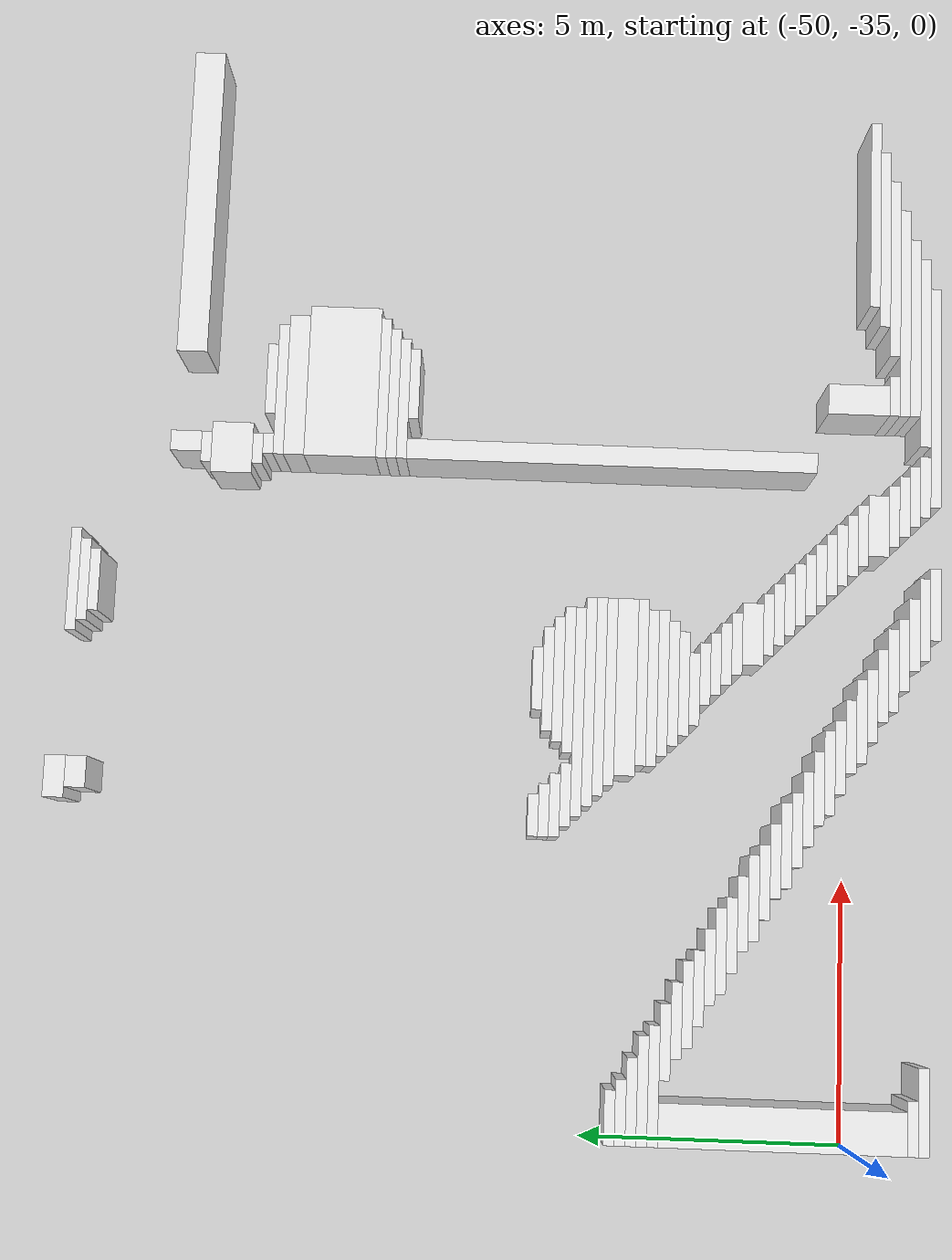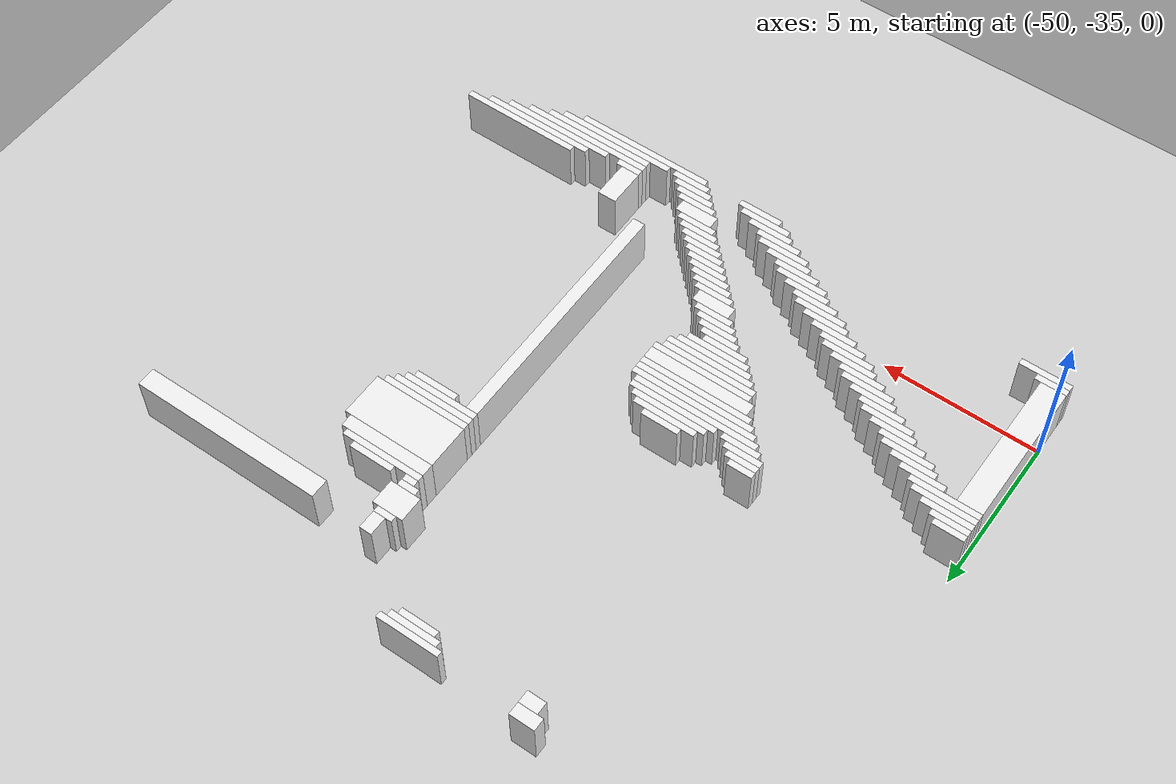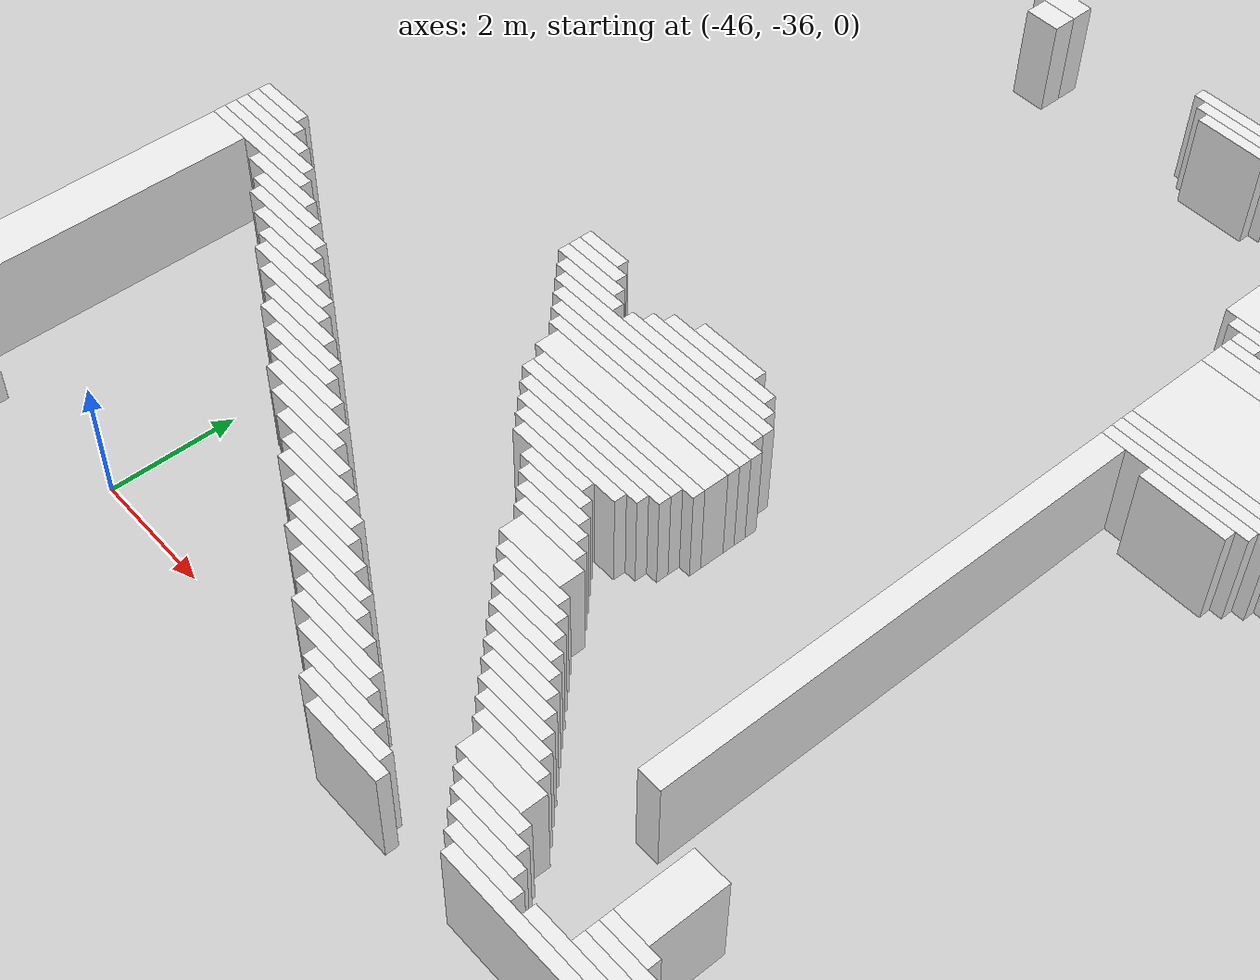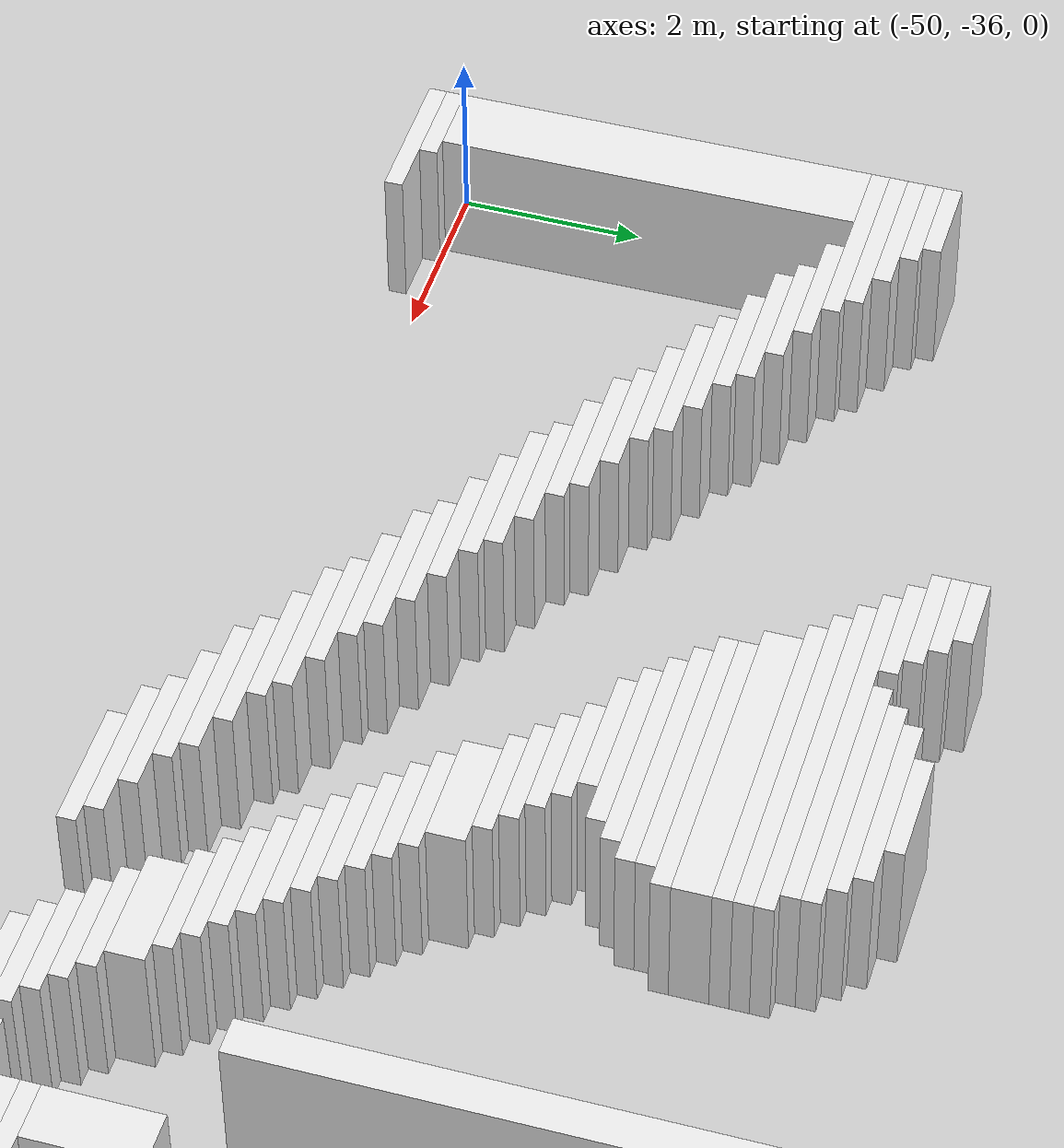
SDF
<sdf version="1.7">
 <world name="default">
  <model name="ground_plane">
   <static>1</static>
   <link name="link">
    <collision name="collision">
     <geometry><plane><normal>0 0 1</normal><size>120 120</size></plane></geometry>
    </collision>
    <visual name="visual">
     <geometry><plane><normal>0 0 1</normal><size>120 120</size></plane></geometry>
     <material>
      <script><uri>file://media/materials/scripts/gazebo.material</uri><name>Gazebo/Grey</name></script>
     </material>
    </visual>
   </link>
  </model>
  <model name="random_complex_03_model">
   <static>1</static>
   <link name="obs_2323">
    <pose>-43.6000 -19.8000 0.8000 0 0 0</pose>
    <collision name="obs_2323_col"><geometry><box><size>0.8000 0.4000 1.6000</size></box></geometry></collision>
    <visual name="obs_2323_vis">
     <geometry><box><size>0.8000 0.4000 1.6000</size></box></geometry>
     <material>
      <script><uri>file://media/materials/scripts/gazebo.material</uri><name>Gazebo/White</name></script>
     </material>
    </visual>
   </link>
   <link name="obs_2324">
    <pose>-39.8000 -19.9000 0.8000 0 0 0</pose>
    <collision name="obs_2324_col"><geometry><box><size>2.0000 0.2000 1.6000</size></box></geometry></collision>
    <visual name="obs_2324_vis">
     <geometry><box><size>2.0000 0.2000 1.6000</size></box></geometry>
     <material>
      <script><uri>file://media/materials/scripts/gazebo.material</uri><name>Gazebo/White</name></script>
     </material>
    </visual>
   </link>
   <link name="obs_2327">
    <pose>-39.8000 -20.1000 0.8000 0 0 0</pose>
    <collision name="obs_2327_col"><geometry><box><size>1.6000 0.2000 1.6000</size></box></geometry></collision>
    <visual name="obs_2327_vis">
     <geometry><box><size>1.6000 0.2000 1.6000</size></box></geometry>
     <material>
      <script><uri>file://media/materials/scripts/gazebo.material</uri><name>Gazebo/White</name></script>
     </material>
    </visual>
   </link>
   <link name="obs_2330">
    <pose>-43.5000 -20.2000 0.8000 0 0 0</pose>
    <collision name="obs_2330_col"><geometry><box><size>0.6000 0.4000 1.6000</size></box></geometry></collision>
    <visual name="obs_2330_vis">
     <geometry><box><size>0.6000 0.4000 1.6000</size></box></geometry>
     <material>
      <script><uri>file://media/materials/scripts/gazebo.material</uri><name>Gazebo/White</name></script>
     </material>
    </visual>
   </link>
   <link name="obs_2332">
    <pose>-39.8000 -20.3000 0.8000 0 0 0</pose>
    <collision name="obs_2332_col"><geometry><box><size>1.2000 0.2000 1.6000</size></box></geometry></collision>
    <visual name="obs_2332_vis">
     <geometry><box><size>1.2000 0.2000 1.6000</size></box></geometry>
     <material>
      <script><uri>file://media/materials/scripts/gazebo.material</uri><name>Gazebo/White</name></script>
     </material>
    </visual>
   </link>
   <link name="obs_2380">
    <pose>-37.0000 -21.9000 0.8000 0 0 0</pose>
    <collision name="obs_2380_col"><geometry><box><size>0.4000 0.6000 1.6000</size></box></geometry></collision>
    <visual name="obs_2380_vis">
     <geometry><box><size>0.4000 0.6000 1.6000</size></box></geometry>
     <material>
      <script><uri>file://media/materials/scripts/gazebo.material</uri><name>Gazebo/White</name></script>
     </material>
    </visual>
   </link>
   <link name="obs_2381">
    <pose>-32.1000 -21.9000 0.8000 0 0 0</pose>
    <collision name="obs_2381_col"><geometry><box><size>6.2000 0.6000 1.6000</size></box></geometry></collision>
    <visual name="obs_2381_vis">
     <geometry><box><size>6.2000 0.6000 1.6000</size></box></geometry>
     <material>
      <script><uri>file://media/materials/scripts/gazebo.material</uri><name>Gazebo/White</name></script>
     </material>
    </visual>
   </link>
   <link name="obs_2388">
    <pose>-37.1000 -22.3000 0.8000 0 0 0</pose>
    <collision name="obs_2388_col"><geometry><box><size>0.6000 0.2000 1.6000</size></box></geometry></collision>
    <visual name="obs_2388_vis">
     <geometry><box><size>0.6000 0.2000 1.6000</size></box></geometry>
     <material>
      <script><uri>file://media/materials/scripts/gazebo.material</uri><name>Gazebo/White</name></script>
     </material>
    </visual>
   </link>
   <link name="obs_2406">
    <pose>-37.1000 -22.8000 0.8000 0 0 0</pose>
    <collision name="obs_2406_col"><geometry><box><size>1.0000 0.8000 1.6000</size></box></geometry></collision>
    <visual name="obs_2406_vis">
     <geometry><box><size>1.0000 0.8000 1.6000</size></box></geometry>
     <material>
      <script><uri>file://media/materials/scripts/gazebo.material</uri><name>Gazebo/White</name></script>
     </material>
    </visual>
   </link>
   <link name="obs_2412">
    <pose>-37.1000 -23.3000 0.8000 0 0 0</pose>
    <collision name="obs_2412_col"><geometry><box><size>0.6000 0.2000 1.6000</size></box></geometry></collision>
    <visual name="obs_2412_vis">
     <geometry><box><size>0.6000 0.2000 1.6000</size></box></geometry>
     <material>
      <script><uri>file://media/materials/scripts/gazebo.material</uri><name>Gazebo/White</name></script>
     </material>
    </visual>
   </link>
   <link name="obs_2420">
    <pose>-37.0000 -23.5000 0.8000 0 0 0</pose>
    <collision name="obs_2420_col"><geometry><box><size>0.4000 0.2000 1.6000</size></box></geometry></collision>
    <visual name="obs_2420_vis">
     <geometry><box><size>0.4000 0.2000 1.6000</size></box></geometry>
     <material>
      <script><uri>file://media/materials/scripts/gazebo.material</uri><name>Gazebo/White</name></script>
     </material>
    </visual>
   </link>
   <link name="obs_2421">
    <pose>-35.7000 -23.5000 0.8000 0 0 0</pose>
    <collision name="obs_2421_col"><geometry><box><size>1.4000 0.2000 1.6000</size></box></geometry></collision>
    <visual name="obs_2421_vis">
     <geometry><box><size>1.4000 0.2000 1.6000</size></box></geometry>
     <material>
      <script><uri>file://media/materials/scripts/gazebo.material</uri><name>Gazebo/White</name></script>
     </material>
    </visual>
   </link>
   <link name="obs_2426">
    <pose>-35.9000 -23.7000 0.8000 0 0 0</pose>
    <collision name="obs_2426_col"><geometry><box><size>2.6000 0.2000 1.6000</size></box></geometry></collision>
    <visual name="obs_2426_vis">
     <geometry><box><size>2.6000 0.2000 1.6000</size></box></geometry>
     <material>
      <script><uri>file://media/materials/scripts/gazebo.material</uri><name>Gazebo/White</name></script>
     </material>
    </visual>
   </link>
   <link name="obs_2441">
    <pose>-35.8000 -24.0000 0.8000 0 0 0</pose>
    <collision name="obs_2441_col"><geometry><box><size>2.8000 0.4000 1.6000</size></box></geometry></collision>
    <visual name="obs_2441_vis">
     <geometry><box><size>2.8000 0.4000 1.6000</size></box></geometry>
     <material>
      <script><uri>file://media/materials/scripts/gazebo.material</uri><name>Gazebo/White</name></script>
     </material>
    </visual>
   </link>
   <link name="obs_2487">
    <pose>-35.7000 -24.9000 0.8000 0 0 0</pose>
    <collision name="obs_2487_col"><geometry><box><size>3.0000 1.4000 1.6000</size></box></geometry></collision>
    <visual name="obs_2487_vis">
     <geometry><box><size>3.0000 1.4000 1.6000</size></box></geometry>
     <material>
      <script><uri>file://media/materials/scripts/gazebo.material</uri><name>Gazebo/White</name></script>
     </material>
    </visual>
   </link>
   <link name="obs_2495">
    <pose>-35.8000 -25.7000 0.8000 0 0 0</pose>
    <collision name="obs_2495_col"><geometry><box><size>2.8000 0.2000 1.6000</size></box></geometry></collision>
    <visual name="obs_2495_vis">
     <geometry><box><size>2.8000 0.2000 1.6000</size></box></geometry>
     <material>
      <script><uri>file://media/materials/scripts/gazebo.material</uri><name>Gazebo/White</name></script>
     </material>
    </visual>
   </link>
   <link name="obs_2503">
    <pose>-35.9000 -25.9000 0.8000 0 0 0</pose>
    <collision name="obs_2503_col"><geometry><box><size>2.6000 0.2000 1.6000</size></box></geometry></collision>
    <visual name="obs_2503_vis">
     <geometry><box><size>2.6000 0.2000 1.6000</size></box></geometry>
     <material>
      <script><uri>file://media/materials/scripts/gazebo.material</uri><name>Gazebo/White</name></script>
     </material>
    </visual>
   </link>
   <link name="obs_2510">
    <pose>-36.0000 -26.1000 0.8000 0 0 0</pose>
    <collision name="obs_2510_col"><geometry><box><size>2.4000 0.2000 1.6000</size></box></geometry></collision>
    <visual name="obs_2510_vis">
     <geometry><box><size>2.4000 0.2000 1.6000</size></box></geometry>
     <material>
      <script><uri>file://media/materials/scripts/gazebo.material</uri><name>Gazebo/White</name></script>
     </material>
    </visual>
   </link>
   <link name="obs_2519">
    <pose>-35.7000 -26.3000 0.8000 0 0 0</pose>
    <collision name="obs_2519_col"><geometry><box><size>1.4000 0.2000 1.6000</size></box></geometry></collision>
    <visual name="obs_2519_vis">
     <geometry><box><size>1.4000 0.2000 1.6000</size></box></geometry>
     <material>
      <script><uri>file://media/materials/scripts/gazebo.material</uri><name>Gazebo/White</name></script>
     </material>
    </visual>
   </link>
   <link name="obs_2568">
    <pose>-44.0000 -28.9000 0.8000 0 0 0</pose>
    <collision name="obs_2568_col"><geometry><box><size>0.8000 0.2000 1.6000</size></box></geometry></collision>
    <visual name="obs_2568_vis">
     <geometry><box><size>0.8000 0.2000 1.6000</size></box></geometry>
     <material>
      <script><uri>file://media/materials/scripts/gazebo.material</uri><name>Gazebo/White</name></script>
     </material>
    </visual>
   </link>
   <link name="obs_2569">
    <pose>-41.4000 -28.9000 0.8000 0 0 0</pose>
    <collision name="obs_2569_col"><geometry><box><size>1.2000 0.2000 1.6000</size></box></geometry></collision>
    <visual name="obs_2569_vis">
     <geometry><box><size>1.2000 0.2000 1.6000</size></box></geometry>
     <material>
      <script><uri>file://media/materials/scripts/gazebo.material</uri><name>Gazebo/White</name></script>
     </material>
    </visual>
   </link>
   <link name="obs_2574">
    <pose>-43.9000 -29.1000 0.8000 0 0 0</pose>
    <collision name="obs_2574_col"><geometry><box><size>1.0000 0.2000 1.6000</size></box></geometry></collision>
    <visual name="obs_2574_vis">
     <geometry><box><size>1.0000 0.2000 1.6000</size></box></geometry>
     <material>
      <script><uri>file://media/materials/scripts/gazebo.material</uri><name>Gazebo/White</name></script>
     </material>
    </visual>
   </link>
   <link name="obs_2575">
    <pose>-41.4000 -29.1000 0.8000 0 0 0</pose>
    <collision name="obs_2575_col"><geometry><box><size>2.0000 0.2000 1.6000</size></box></geometry></collision>
    <visual name="obs_2575_vis">
     <geometry><box><size>2.0000 0.2000 1.6000</size></box></geometry>
     <material>
      <script><uri>file://media/materials/scripts/gazebo.material</uri><name>Gazebo/White</name></script>
     </material>
    </visual>
   </link>
   <link name="obs_2579">
    <pose>-43.8000 -29.3000 0.8000 0 0 0</pose>
    <collision name="obs_2579_col"><geometry><box><size>1.2000 0.2000 1.6000</size></box></geometry></collision>
    <visual name="obs_2579_vis">
     <geometry><box><size>1.2000 0.2000 1.6000</size></box></geometry>
     <material>
      <script><uri>file://media/materials/scripts/gazebo.material</uri><name>Gazebo/White</name></script>
     </material>
    </visual>
   </link>
   <link name="obs_2580">
    <pose>-41.4000 -29.3000 0.8000 0 0 0</pose>
    <collision name="obs_2580_col"><geometry><box><size>2.4000 0.2000 1.6000</size></box></geometry></collision>
    <visual name="obs_2580_vis">
     <geometry><box><size>2.4000 0.2000 1.6000</size></box></geometry>
     <material>
      <script><uri>file://media/materials/scripts/gazebo.material</uri><name>Gazebo/White</name></script>
     </material>
    </visual>
   </link>
   <link name="obs_2583">
    <pose>-43.6000 -29.5000 0.8000 0 0 0</pose>
    <collision name="obs_2583_col"><geometry><box><size>1.2000 0.2000 1.6000</size></box></geometry></collision>
    <visual name="obs_2583_vis">
     <geometry><box><size>1.2000 0.2000 1.6000</size></box></geometry>
     <material>
      <script><uri>file://media/materials/scripts/gazebo.material</uri><name>Gazebo/White</name></script>
     </material>
    </visual>
   </link>
   <link name="obs_2584">
    <pose>-41.4000 -29.5000 0.8000 0 0 0</pose>
    <collision name="obs_2584_col"><geometry><box><size>2.8000 0.2000 1.6000</size></box></geometry></collision>
    <visual name="obs_2584_vis">
     <geometry><box><size>2.8000 0.2000 1.6000</size></box></geometry>
     <material>
      <script><uri>file://media/materials/scripts/gazebo.material</uri><name>Gazebo/White</name></script>
     </material>
    </visual>
   </link>
   <link name="obs_2588">
    <pose>-42.0000 -29.7000 0.8000 0 0 0</pose>
    <collision name="obs_2588_col"><geometry><box><size>4.0000 0.2000 1.6000</size></box></geometry></collision>
    <visual name="obs_2588_vis">
     <geometry><box><size>4.0000 0.2000 1.6000</size></box></geometry>
     <material>
      <script><uri>file://media/materials/scripts/gazebo.material</uri><name>Gazebo/White</name></script>
     </material>
    </visual>
   </link>
   <link name="obs_2594">
    <pose>-41.8000 -29.9000 0.8000 0 0 0</pose>
    <collision name="obs_2594_col"><geometry><box><size>4.0000 0.2000 1.6000</size></box></geometry></collision>
    <visual name="obs_2594_vis">
     <geometry><box><size>4.0000 0.2000 1.6000</size></box></geometry>
     <material>
      <script><uri>file://media/materials/scripts/gazebo.material</uri><name>Gazebo/White</name></script>
     </material>
    </visual>
   </link>
   <link name="obs_2599">
    <pose>-41.7000 -30.1000 0.8000 0 0 0</pose>
    <collision name="obs_2599_col"><geometry><box><size>3.8000 0.2000 1.6000</size></box></geometry></collision>
    <visual name="obs_2599_vis">
     <geometry><box><size>3.8000 0.2000 1.6000</size></box></geometry>
     <material>
      <script><uri>file://media/materials/scripts/gazebo.material</uri><name>Gazebo/White</name></script>
     </material>
    </visual>
   </link>
   <link name="obs_2606">
    <pose>-41.6000 -30.3000 0.8000 0 0 0</pose>
    <collision name="obs_2606_col"><geometry><box><size>3.6000 0.2000 1.6000</size></box></geometry></collision>
    <visual name="obs_2606_vis">
     <geometry><box><size>3.6000 0.2000 1.6000</size></box></geometry>
     <material>
      <script><uri>file://media/materials/scripts/gazebo.material</uri><name>Gazebo/White</name></script>
     </material>
    </visual>
   </link>
   <link name="obs_2611">
    <pose>-49.5000 -30.5000 0.8000 0 0 0</pose>
    <collision name="obs_2611_col"><geometry><box><size>1.0000 0.2000 1.6000</size></box></geometry></collision>
    <visual name="obs_2611_vis">
     <geometry><box><size>1.0000 0.2000 1.6000</size></box></geometry>
     <material>
      <script><uri>file://media/materials/scripts/gazebo.material</uri><name>Gazebo/White</name></script>
     </material>
    </visual>
   </link>
   <link name="obs_2615">
    <pose>-41.5000 -30.6000 0.8000 0 0 0</pose>
    <collision name="obs_2615_col"><geometry><box><size>3.4000 0.4000 1.6000</size></box></geometry></collision>
    <visual name="obs_2615_vis">
     <geometry><box><size>3.4000 0.4000 1.6000</size></box></geometry>
     <material>
      <script><uri>file://media/materials/scripts/gazebo.material</uri><name>Gazebo/White</name></script>
     </material>
    </visual>
   </link>
   <link name="obs_2616">
    <pose>-49.4000 -30.7000 0.8000 0 0 0</pose>
    <collision name="obs_2616_col"><geometry><box><size>1.2000 0.2000 1.6000</size></box></geometry></collision>
    <visual name="obs_2616_vis">
     <geometry><box><size>1.2000 0.2000 1.6000</size></box></geometry>
     <material>
      <script><uri>file://media/materials/scripts/gazebo.material</uri><name>Gazebo/White</name></script>
     </material>
    </visual>
   </link>
   <link name="obs_2622">
    <pose>-49.2000 -30.9000 0.8000 0 0 0</pose>
    <collision name="obs_2622_col"><geometry><box><size>1.6000 0.2000 1.6000</size></box></geometry></collision>
    <visual name="obs_2622_vis">
     <geometry><box><size>1.6000 0.2000 1.6000</size></box></geometry>
     <material>
      <script><uri>file://media/materials/scripts/gazebo.material</uri><name>Gazebo/White</name></script>
     </material>
    </visual>
   </link>
   <link name="obs_2623">
    <pose>-41.4000 -30.9000 0.8000 0 0 0</pose>
    <collision name="obs_2623_col"><geometry><box><size>3.2000 0.2000 1.6000</size></box></geometry></collision>
    <visual name="obs_2623_vis">
     <geometry><box><size>3.2000 0.2000 1.6000</size></box></geometry>
     <material>
      <script><uri>file://media/materials/scripts/gazebo.material</uri><name>Gazebo/White</name></script>
     </material>
    </visual>
   </link>
   <link name="obs_2627">
    <pose>-49.0000 -31.1000 0.8000 0 0 0</pose>
    <collision name="obs_2627_col"><geometry><box><size>2.0000 0.2000 1.6000</size></box></geometry></collision>
    <visual name="obs_2627_vis">
     <geometry><box><size>2.0000 0.2000 1.6000</size></box></geometry>
     <material>
      <script><uri>file://media/materials/scripts/gazebo.material</uri><name>Gazebo/White</name></script>
     </material>
    </visual>
   </link>
   <link name="obs_2628">
    <pose>-41.5000 -31.1000 0.8000 0 0 0</pose>
    <collision name="obs_2628_col"><geometry><box><size>3.0000 0.2000 1.6000</size></box></geometry></collision>
    <visual name="obs_2628_vis">
     <geometry><box><size>3.0000 0.2000 1.6000</size></box></geometry>
     <material>
      <script><uri>file://media/materials/scripts/gazebo.material</uri><name>Gazebo/White</name></script>
     </material>
    </visual>
   </link>
   <link name="obs_2634">
    <pose>-48.9000 -31.3000 0.8000 0 0 0</pose>
    <collision name="obs_2634_col"><geometry><box><size>2.2000 0.2000 1.6000</size></box></geometry></collision>
    <visual name="obs_2634_vis">
     <geometry><box><size>2.2000 0.2000 1.6000</size></box></geometry>
     <material>
      <script><uri>file://media/materials/scripts/gazebo.material</uri><name>Gazebo/White</name></script>
     </material>
    </visual>
   </link>
   <link name="obs_2635">
    <pose>-41.4000 -31.3000 0.8000 0 0 0</pose>
    <collision name="obs_2635_col"><geometry><box><size>2.8000 0.2000 1.6000</size></box></geometry></collision>
    <visual name="obs_2635_vis">
     <geometry><box><size>2.8000 0.2000 1.6000</size></box></geometry>
     <material>
      <script><uri>file://media/materials/scripts/gazebo.material</uri><name>Gazebo/White</name></script>
     </material>
    </visual>
   </link>
   <link name="obs_2640">
    <pose>-48.1000 -31.5000 0.8000 0 0 0</pose>
    <collision name="obs_2640_col"><geometry><box><size>1.4000 0.2000 1.6000</size></box></geometry></collision>
    <visual name="obs_2640_vis">
     <geometry><box><size>1.4000 0.2000 1.6000</size></box></geometry>
     <material>
      <script><uri>file://media/materials/scripts/gazebo.material</uri><name>Gazebo/White</name></script>
     </material>
    </visual>
   </link>
   <link name="obs_2641">
    <pose>-41.4000 -31.5000 0.8000 0 0 0</pose>
    <collision name="obs_2641_col"><geometry><box><size>2.4000 0.2000 1.6000</size></box></geometry></collision>
    <visual name="obs_2641_vis">
     <geometry><box><size>2.4000 0.2000 1.6000</size></box></geometry>
     <material>
      <script><uri>file://media/materials/scripts/gazebo.material</uri><name>Gazebo/White</name></script>
     </material>
    </visual>
   </link>
   <link name="obs_2648">
    <pose>-47.7000 -31.7000 0.8000 0 0 0</pose>
    <collision name="obs_2648_col"><geometry><box><size>1.4000 0.2000 1.6000</size></box></geometry></collision>
    <visual name="obs_2648_vis">
     <geometry><box><size>1.4000 0.2000 1.6000</size></box></geometry>
     <material>
      <script><uri>file://media/materials/scripts/gazebo.material</uri><name>Gazebo/White</name></script>
     </material>
    </visual>
   </link>
   <link name="obs_2649">
    <pose>-41.4000 -31.7000 0.8000 0 0 0</pose>
    <collision name="obs_2649_col"><geometry><box><size>2.0000 0.2000 1.6000</size></box></geometry></collision>
    <visual name="obs_2649_vis">
     <geometry><box><size>2.0000 0.2000 1.6000</size></box></geometry>
     <material>
      <script><uri>file://media/materials/scripts/gazebo.material</uri><name>Gazebo/White</name></script>
     </material>
    </visual>
   </link>
   <link name="obs_2653">
    <pose>-47.4000 -31.9000 0.8000 0 0 0</pose>
    <collision name="obs_2653_col"><geometry><box><size>1.6000 0.2000 1.6000</size></box></geometry></collision>
    <visual name="obs_2653_vis">
     <geometry><box><size>1.6000 0.2000 1.6000</size></box></geometry>
     <material>
      <script><uri>file://media/materials/scripts/gazebo.material</uri><name>Gazebo/White</name></script>
     </material>
    </visual>
   </link>
   <link name="obs_2654">
    <pose>-41.5000 -31.9000 0.8000 0 0 0</pose>
    <collision name="obs_2654_col"><geometry><box><size>1.4000 0.2000 1.6000</size></box></geometry></collision>
    <visual name="obs_2654_vis">
     <geometry><box><size>1.4000 0.2000 1.6000</size></box></geometry>
     <material>
      <script><uri>file://media/materials/scripts/gazebo.material</uri><name>Gazebo/White</name></script>
     </material>
    </visual>
   </link>
   <link name="obs_2660">
    <pose>-47.1000 -32.1000 0.8000 0 0 0</pose>
    <collision name="obs_2660_col"><geometry><box><size>1.4000 0.2000 1.6000</size></box></geometry></collision>
    <visual name="obs_2660_vis">
     <geometry><box><size>1.4000 0.2000 1.6000</size></box></geometry>
     <material>
      <script><uri>file://media/materials/scripts/gazebo.material</uri><name>Gazebo/White</name></script>
     </material>
    </visual>
   </link>
   <link name="obs_2661">
    <pose>-41.2000 -32.1000 0.8000 0 0 0</pose>
    <collision name="obs_2661_col"><geometry><box><size>1.2000 0.2000 1.6000</size></box></geometry></collision>
    <visual name="obs_2661_vis">
     <geometry><box><size>1.2000 0.2000 1.6000</size></box></geometry>
     <material>
      <script><uri>file://media/materials/scripts/gazebo.material</uri><name>Gazebo/White</name></script>
     </material>
    </visual>
   </link>
   <link name="obs_2667">
    <pose>-46.7000 -32.3000 0.8000 0 0 0</pose>
    <collision name="obs_2667_col"><geometry><box><size>1.4000 0.2000 1.6000</size></box></geometry></collision>
    <visual name="obs_2667_vis">
     <geometry><box><size>1.4000 0.2000 1.6000</size></box></geometry>
     <material>
      <script><uri>file://media/materials/scripts/gazebo.material</uri><name>Gazebo/White</name></script>
     </material>
    </visual>
   </link>
   <link name="obs_2668">
    <pose>-41.0000 -32.3000 0.8000 0 0 0</pose>
    <collision name="obs_2668_col"><geometry><box><size>1.2000 0.2000 1.6000</size></box></geometry></collision>
    <visual name="obs_2668_vis">
     <geometry><box><size>1.2000 0.2000 1.6000</size></box></geometry>
     <material>
      <script><uri>file://media/materials/scripts/gazebo.material</uri><name>Gazebo/White</name></script>
     </material>
    </visual>
   </link>
   <link name="obs_2675">
    <pose>-46.4000 -32.5000 0.8000 0 0 0</pose>
    <collision name="obs_2675_col"><geometry><box><size>1.6000 0.2000 1.6000</size></box></geometry></collision>
    <visual name="obs_2675_vis">
     <geometry><box><size>1.6000 0.2000 1.6000</size></box></geometry>
     <material>
      <script><uri>file://media/materials/scripts/gazebo.material</uri><name>Gazebo/White</name></script>
     </material>
    </visual>
   </link>
   <link name="obs_2676">
    <pose>-40.8000 -32.5000 0.8000 0 0 0</pose>
    <collision name="obs_2676_col"><geometry><box><size>1.2000 0.2000 1.6000</size></box></geometry></collision>
    <visual name="obs_2676_vis">
     <geometry><box><size>1.2000 0.2000 1.6000</size></box></geometry>
     <material>
      <script><uri>file://media/materials/scripts/gazebo.material</uri><name>Gazebo/White</name></script>
     </material>
    </visual>
   </link>
   <link name="obs_2682">
    <pose>-46.1000 -32.7000 0.8000 0 0 0</pose>
    <collision name="obs_2682_col"><geometry><box><size>1.4000 0.2000 1.6000</size></box></geometry></collision>
    <visual name="obs_2682_vis">
     <geometry><box><size>1.4000 0.2000 1.6000</size></box></geometry>
     <material>
      <script><uri>file://media/materials/scripts/gazebo.material</uri><name>Gazebo/White</name></script>
     </material>
    </visual>
   </link>
   <link name="obs_2683">
    <pose>-40.6000 -32.7000 0.8000 0 0 0</pose>
    <collision name="obs_2683_col"><geometry><box><size>1.2000 0.2000 1.6000</size></box></geometry></collision>
    <visual name="obs_2683_vis">
     <geometry><box><size>1.2000 0.2000 1.6000</size></box></geometry>
     <material>
      <script><uri>file://media/materials/scripts/gazebo.material</uri><name>Gazebo/White</name></script>
     </material>
    </visual>
   </link>
   <link name="obs_2692">
    <pose>-45.7000 -32.9000 0.8000 0 0 0</pose>
    <collision name="obs_2692_col"><geometry><box><size>1.4000 0.2000 1.6000</size></box></geometry></collision>
    <visual name="obs_2692_vis">
     <geometry><box><size>1.4000 0.2000 1.6000</size></box></geometry>
     <material>
      <script><uri>file://media/materials/scripts/gazebo.material</uri><name>Gazebo/White</name></script>
     </material>
    </visual>
   </link>
   <link name="obs_2698">
    <pose>-40.4000 -33.0000 0.8000 0 0 0</pose>
    <collision name="obs_2698_col"><geometry><box><size>1.2000 0.4000 1.6000</size></box></geometry></collision>
    <visual name="obs_2698_vis">
     <geometry><box><size>1.2000 0.4000 1.6000</size></box></geometry>
     <material>
      <script><uri>file://media/materials/scripts/gazebo.material</uri><name>Gazebo/White</name></script>
     </material>
    </visual>
   </link>
   <link name="obs_2700">
    <pose>-45.4000 -33.1000 0.8000 0 0 0</pose>
    <collision name="obs_2700_col"><geometry><box><size>1.6000 0.2000 1.6000</size></box></geometry></collision>
    <visual name="obs_2700_vis">
     <geometry><box><size>1.6000 0.2000 1.6000</size></box></geometry>
     <material>
      <script><uri>file://media/materials/scripts/gazebo.material</uri><name>Gazebo/White</name></script>
     </material>
    </visual>
   </link>
   <link name="obs_2707">
    <pose>-45.1000 -33.3000 0.8000 0 0 0</pose>
    <collision name="obs_2707_col"><geometry><box><size>1.4000 0.2000 1.6000</size></box></geometry></collision>
    <visual name="obs_2707_vis">
     <geometry><box><size>1.4000 0.2000 1.6000</size></box></geometry>
     <material>
      <script><uri>file://media/materials/scripts/gazebo.material</uri><name>Gazebo/White</name></script>
     </material>
    </visual>
   </link>
   <link name="obs_2708">
    <pose>-40.2000 -33.3000 0.8000 0 0 0</pose>
    <collision name="obs_2708_col"><geometry><box><size>1.2000 0.2000 1.6000</size></box></geometry></collision>
    <visual name="obs_2708_vis">
     <geometry><box><size>1.2000 0.2000 1.6000</size></box></geometry>
     <material>
      <script><uri>file://media/materials/scripts/gazebo.material</uri><name>Gazebo/White</name></script>
     </material>
    </visual>
   </link>
   <link name="obs_2712">
    <pose>-44.7000 -33.5000 0.8000 0 0 0</pose>
    <collision name="obs_2712_col"><geometry><box><size>1.4000 0.2000 1.6000</size></box></geometry></collision>
    <visual name="obs_2712_vis">
     <geometry><box><size>1.4000 0.2000 1.6000</size></box></geometry>
     <material>
      <script><uri>file://media/materials/scripts/gazebo.material</uri><name>Gazebo/White</name></script>
     </material>
    </visual>
   </link>
   <link name="obs_2713">
    <pose>-40.0000 -33.5000 0.8000 0 0 0</pose>
    <collision name="obs_2713_col"><geometry><box><size>1.2000 0.2000 1.6000</size></box></geometry></collision>
    <visual name="obs_2713_vis">
     <geometry><box><size>1.2000 0.2000 1.6000</size></box></geometry>
     <material>
      <script><uri>file://media/materials/scripts/gazebo.material</uri><name>Gazebo/White</name></script>
     </material>
    </visual>
   </link>
   <link name="obs_2720">
    <pose>-44.4000 -33.7000 0.8000 0 0 0</pose>
    <collision name="obs_2720_col"><geometry><box><size>1.6000 0.2000 1.6000</size></box></geometry></collision>
    <visual name="obs_2720_vis">
     <geometry><box><size>1.6000 0.2000 1.6000</size></box></geometry>
     <material>
      <script><uri>file://media/materials/scripts/gazebo.material</uri><name>Gazebo/White</name></script>
     </material>
    </visual>
   </link>
   <link name="obs_2721">
    <pose>-39.8000 -33.7000 0.8000 0 0 0</pose>
    <collision name="obs_2721_col"><geometry><box><size>1.2000 0.2000 1.6000</size></box></geometry></collision>
    <visual name="obs_2721_vis">
     <geometry><box><size>1.2000 0.2000 1.6000</size></box></geometry>
     <material>
      <script><uri>file://media/materials/scripts/gazebo.material</uri><name>Gazebo/White</name></script>
     </material>
    </visual>
   </link>
   <link name="obs_2727">
    <pose>-44.1000 -33.9000 0.8000 0 0 0</pose>
    <collision name="obs_2727_col"><geometry><box><size>1.4000 0.2000 1.6000</size></box></geometry></collision>
    <visual name="obs_2727_vis">
     <geometry><box><size>1.4000 0.2000 1.6000</size></box></geometry>
     <material>
      <script><uri>file://media/materials/scripts/gazebo.material</uri><name>Gazebo/White</name></script>
     </material>
    </visual>
   </link>
   <link name="obs_2728">
    <pose>-39.6000 -33.9000 0.8000 0 0 0</pose>
    <collision name="obs_2728_col"><geometry><box><size>1.2000 0.2000 1.6000</size></box></geometry></collision>
    <visual name="obs_2728_vis">
     <geometry><box><size>1.2000 0.2000 1.6000</size></box></geometry>
     <material>
      <script><uri>file://media/materials/scripts/gazebo.material</uri><name>Gazebo/White</name></script>
     </material>
    </visual>
   </link>
   <link name="obs_2732">
    <pose>-37.0000 -30.2000 0.8000 0 0 0</pose>
    <collision name="obs_2732_col"><geometry><box><size>0.4000 8.0000 1.6000</size></box></geometry></collision>
    <visual name="obs_2732_vis">
     <geometry><box><size>0.4000 8.0000 1.6000</size></box></geometry>
     <material>
      <script><uri>file://media/materials/scripts/gazebo.material</uri><name>Gazebo/White</name></script>
     </material>
    </visual>
   </link>
   <link name="obs_2734">
    <pose>-43.7000 -34.1000 0.8000 0 0 0</pose>
    <collision name="obs_2734_col"><geometry><box><size>1.4000 0.2000 1.6000</size></box></geometry></collision>
    <visual name="obs_2734_vis">
     <geometry><box><size>1.4000 0.2000 1.6000</size></box></geometry>
     <material>
      <script><uri>file://media/materials/scripts/gazebo.material</uri><name>Gazebo/White</name></script>
     </material>
    </visual>
   </link>
   <link name="obs_2735">
    <pose>-39.4000 -34.1000 0.8000 0 0 0</pose>
    <collision name="obs_2735_col"><geometry><box><size>1.2000 0.2000 1.6000</size></box></geometry></collision>
    <visual name="obs_2735_vis">
     <geometry><box><size>1.2000 0.2000 1.6000</size></box></geometry>
     <material>
      <script><uri>file://media/materials/scripts/gazebo.material</uri><name>Gazebo/White</name></script>
     </material>
    </visual>
   </link>
   <link name="obs_2741">
    <pose>-43.3000 -34.3000 0.8000 0 0 0</pose>
    <collision name="obs_2741_col"><geometry><box><size>1.4000 0.2000 1.6000</size></box></geometry></collision>
    <visual name="obs_2741_vis">
     <geometry><box><size>1.4000 0.2000 1.6000</size></box></geometry>
     <material>
      <script><uri>file://media/materials/scripts/gazebo.material</uri><name>Gazebo/White</name></script>
     </material>
    </visual>
   </link>
   <link name="obs_2742">
    <pose>-39.2000 -34.3000 0.8000 0 0 0</pose>
    <collision name="obs_2742_col"><geometry><box><size>1.2000 0.2000 1.6000</size></box></geometry></collision>
    <visual name="obs_2742_vis">
     <geometry><box><size>1.2000 0.2000 1.6000</size></box></geometry>
     <material>
      <script><uri>file://media/materials/scripts/gazebo.material</uri><name>Gazebo/White</name></script>
     </material>
    </visual>
   </link>
   <link name="obs_2747">
    <pose>-43.0000 -34.5000 0.8000 0 0 0</pose>
    <collision name="obs_2747_col"><geometry><box><size>1.6000 0.2000 1.6000</size></box></geometry></collision>
    <visual name="obs_2747_vis">
     <geometry><box><size>1.6000 0.2000 1.6000</size></box></geometry>
     <material>
      <script><uri>file://media/materials/scripts/gazebo.material</uri><name>Gazebo/White</name></script>
     </material>
    </visual>
   </link>
   <link name="obs_2748">
    <pose>-39.0000 -34.5000 0.8000 0 0 0</pose>
    <collision name="obs_2748_col"><geometry><box><size>1.2000 0.2000 1.6000</size></box></geometry></collision>
    <visual name="obs_2748_vis">
     <geometry><box><size>1.2000 0.2000 1.6000</size></box></geometry>
     <material>
      <script><uri>file://media/materials/scripts/gazebo.material</uri><name>Gazebo/White</name></script>
     </material>
    </visual>
   </link>
   <link name="obs_2756">
    <pose>-42.7000 -34.7000 0.8000 0 0 0</pose>
    <collision name="obs_2756_col"><geometry><box><size>1.4000 0.2000 1.6000</size></box></geometry></collision>
    <visual name="obs_2756_vis">
     <geometry><box><size>1.4000 0.2000 1.6000</size></box></geometry>
     <material>
      <script><uri>file://media/materials/scripts/gazebo.material</uri><name>Gazebo/White</name></script>
     </material>
    </visual>
   </link>
   <link name="obs_2757">
    <pose>-38.8000 -34.7000 0.8000 0 0 0</pose>
    <collision name="obs_2757_col"><geometry><box><size>1.2000 0.2000 1.6000</size></box></geometry></collision>
    <visual name="obs_2757_vis">
     <geometry><box><size>1.2000 0.2000 1.6000</size></box></geometry>
     <material>
      <script><uri>file://media/materials/scripts/gazebo.material</uri><name>Gazebo/White</name></script>
     </material>
    </visual>
   </link>
   <link name="obs_2764">
    <pose>-42.3000 -34.9000 0.8000 0 0 0</pose>
    <collision name="obs_2764_col"><geometry><box><size>1.4000 0.2000 1.6000</size></box></geometry></collision>
    <visual name="obs_2764_vis">
     <geometry><box><size>1.4000 0.2000 1.6000</size></box></geometry>
     <material>
      <script><uri>file://media/materials/scripts/gazebo.material</uri><name>Gazebo/White</name></script>
     </material>
    </visual>
   </link>
   <link name="obs_2765">
    <pose>-38.6000 -34.9000 0.8000 0 0 0</pose>
    <collision name="obs_2765_col"><geometry><box><size>1.2000 0.2000 1.6000</size></box></geometry></collision>
    <visual name="obs_2765_vis">
     <geometry><box><size>1.2000 0.2000 1.6000</size></box></geometry>
     <material>
      <script><uri>file://media/materials/scripts/gazebo.material</uri><name>Gazebo/White</name></script>
     </material>
    </visual>
   </link>
   <link name="obs_2771">
    <pose>-42.0000 -35.1000 0.8000 0 0 0</pose>
    <collision name="obs_2771_col"><geometry><box><size>1.6000 0.2000 1.6000</size></box></geometry></collision>
    <visual name="obs_2771_vis">
     <geometry><box><size>1.6000 0.2000 1.6000</size></box></geometry>
     <material>
      <script><uri>file://media/materials/scripts/gazebo.material</uri><name>Gazebo/White</name></script>
     </material>
    </visual>
   </link>
   <link name="obs_2772">
    <pose>-38.4000 -35.1000 0.8000 0 0 0</pose>
    <collision name="obs_2772_col"><geometry><box><size>1.2000 0.2000 1.6000</size></box></geometry></collision>
    <visual name="obs_2772_vis">
     <geometry><box><size>1.2000 0.2000 1.6000</size></box></geometry>
     <material>
      <script><uri>file://media/materials/scripts/gazebo.material</uri><name>Gazebo/White</name></script>
     </material>
    </visual>
   </link>
   <link name="obs_2781">
    <pose>-41.7000 -35.3000 0.8000 0 0 0</pose>
    <collision name="obs_2781_col"><geometry><box><size>1.4000 0.2000 1.6000</size></box></geometry></collision>
    <visual name="obs_2781_vis">
     <geometry><box><size>1.4000 0.2000 1.6000</size></box></geometry>
     <material>
      <script><uri>file://media/materials/scripts/gazebo.material</uri><name>Gazebo/White</name></script>
     </material>
    </visual>
   </link>
   <link name="obs_2782">
    <pose>-31.9000 -35.3000 0.8000 0 0 0</pose>
    <collision name="obs_2782_col"><geometry><box><size>3.8000 0.2000 1.6000</size></box></geometry></collision>
    <visual name="obs_2782_vis">
     <geometry><box><size>3.8000 0.2000 1.6000</size></box></geometry>
     <material>
      <script><uri>file://media/materials/scripts/gazebo.material</uri><name>Gazebo/White</name></script>
     </material>
    </visual>
   </link>
   <link name="obs_2786">
    <pose>-35.7000 -35.0000 0.8000 0 0 0</pose>
    <collision name="obs_2786_col"><geometry><box><size>0.6000 1.2000 1.6000</size></box></geometry></collision>
    <visual name="obs_2786_vis">
     <geometry><box><size>0.6000 1.2000 1.6000</size></box></geometry>
     <material>
      <script><uri>file://media/materials/scripts/gazebo.material</uri><name>Gazebo/White</name></script>
     </material>
    </visual>
   </link>
   <link name="obs_2787">
    <pose>-38.2000 -35.4000 0.8000 0 0 0</pose>
    <collision name="obs_2787_col"><geometry><box><size>1.2000 0.4000 1.6000</size></box></geometry></collision>
    <visual name="obs_2787_vis">
     <geometry><box><size>1.2000 0.4000 1.6000</size></box></geometry>
     <material>
      <script><uri>file://media/materials/scripts/gazebo.material</uri><name>Gazebo/White</name></script>
     </material>
    </visual>
   </link>
   <link name="obs_2788">
    <pose>-41.3000 -35.5000 0.8000 0 0 0</pose>
    <collision name="obs_2788_col"><geometry><box><size>1.4000 0.2000 1.6000</size></box></geometry></collision>
    <visual name="obs_2788_vis">
     <geometry><box><size>1.4000 0.2000 1.6000</size></box></geometry>
     <material>
      <script><uri>file://media/materials/scripts/gazebo.material</uri><name>Gazebo/White</name></script>
     </material>
    </visual>
   </link>
   <link name="obs_2789">
    <pose>-32.4000 -35.5000 0.8000 0 0 0</pose>
    <collision name="obs_2789_col"><geometry><box><size>3.6000 0.2000 1.6000</size></box></geometry></collision>
    <visual name="obs_2789_vis">
     <geometry><box><size>3.6000 0.2000 1.6000</size></box></geometry>
     <material>
      <script><uri>file://media/materials/scripts/gazebo.material</uri><name>Gazebo/White</name></script>
     </material>
    </visual>
   </link>
   <link name="obs_2795">
    <pose>-41.0000 -35.7000 0.8000 0 0 0</pose>
    <collision name="obs_2795_col"><geometry><box><size>1.6000 0.2000 1.6000</size></box></geometry></collision>
    <visual name="obs_2795_vis">
     <geometry><box><size>1.6000 0.2000 1.6000</size></box></geometry>
     <material>
      <script><uri>file://media/materials/scripts/gazebo.material</uri><name>Gazebo/White</name></script>
     </material>
    </visual>
   </link>
   <link name="obs_2796">
    <pose>-38.0000 -35.7000 0.8000 0 0 0</pose>
    <collision name="obs_2796_col"><geometry><box><size>1.2000 0.2000 1.6000</size></box></geometry></collision>
    <visual name="obs_2796_vis">
     <geometry><box><size>1.2000 0.2000 1.6000</size></box></geometry>
     <material>
      <script><uri>file://media/materials/scripts/gazebo.material</uri><name>Gazebo/White</name></script>
     </material>
    </visual>
   </link>
   <link name="obs_2797">
    <pose>-35.6000 -35.7000 0.8000 0 0 0</pose>
    <collision name="obs_2797_col"><geometry><box><size>0.8000 0.2000 1.6000</size></box></geometry></collision>
    <visual name="obs_2797_vis">
     <geometry><box><size>0.8000 0.2000 1.6000</size></box></geometry>
     <material>
      <script><uri>file://media/materials/scripts/gazebo.material</uri><name>Gazebo/White</name></script>
     </material>
    </visual>
   </link>
   <link name="obs_2798">
    <pose>-33.0000 -35.7000 0.8000 0 0 0</pose>
    <collision name="obs_2798_col"><geometry><box><size>3.6000 0.2000 1.6000</size></box></geometry></collision>
    <visual name="obs_2798_vis">
     <geometry><box><size>3.6000 0.2000 1.6000</size></box></geometry>
     <material>
      <script><uri>file://media/materials/scripts/gazebo.material</uri><name>Gazebo/White</name></script>
     </material>
    </visual>
   </link>
   <link name="obs_2801">
    <pose>-49.6000 -33.7000 0.8000 0 0 0</pose>
    <collision name="obs_2801_col"><geometry><box><size>0.8000 4.6000 1.6000</size></box></geometry></collision>
    <visual name="obs_2801_vis">
     <geometry><box><size>0.8000 4.6000 1.6000</size></box></geometry>
     <material>
      <script><uri>file://media/materials/scripts/gazebo.material</uri><name>Gazebo/White</name></script>
     </material>
    </visual>
   </link>
   <link name="obs_2803">
    <pose>-40.7000 -35.9000 0.8000 0 0 0</pose>
    <collision name="obs_2803_col"><geometry><box><size>1.4000 0.2000 1.6000</size></box></geometry></collision>
    <visual name="obs_2803_vis">
     <geometry><box><size>1.4000 0.2000 1.6000</size></box></geometry>
     <material>
      <script><uri>file://media/materials/scripts/gazebo.material</uri><name>Gazebo/White</name></script>
     </material>
    </visual>
   </link>
   <link name="obs_2804">
    <pose>-37.8000 -35.9000 0.8000 0 0 0</pose>
    <collision name="obs_2804_col"><geometry><box><size>1.2000 0.2000 1.6000</size></box></geometry></collision>
    <visual name="obs_2804_vis">
     <geometry><box><size>1.2000 0.2000 1.6000</size></box></geometry>
     <material>
      <script><uri>file://media/materials/scripts/gazebo.material</uri><name>Gazebo/White</name></script>
     </material>
    </visual>
   </link>
   <link name="obs_2805">
    <pose>-33.9000 -35.9000 0.8000 0 0 0</pose>
    <collision name="obs_2805_col"><geometry><box><size>4.2000 0.2000 1.6000</size></box></geometry></collision>
    <visual name="obs_2805_vis">
     <geometry><box><size>4.2000 0.2000 1.6000</size></box></geometry>
     <material>
      <script><uri>file://media/materials/scripts/gazebo.material</uri><name>Gazebo/White</name></script>
     </material>
    </visual>
   </link>
   <link name="obs_2810">
    <pose>-49.5000 -36.1000 0.8000 0 0 0</pose>
    <collision name="obs_2810_col"><geometry><box><size>1.0000 0.2000 1.6000</size></box></geometry></collision>
    <visual name="obs_2810_vis">
     <geometry><box><size>1.0000 0.2000 1.6000</size></box></geometry>
     <material>
      <script><uri>file://media/materials/scripts/gazebo.material</uri><name>Gazebo/White</name></script>
     </material>
    </visual>
   </link>
   <link name="obs_2811">
    <pose>-40.3000 -36.1000 0.8000 0 0 0</pose>
    <collision name="obs_2811_col"><geometry><box><size>1.4000 0.2000 1.6000</size></box></geometry></collision>
    <visual name="obs_2811_vis">
     <geometry><box><size>1.4000 0.2000 1.6000</size></box></geometry>
     <material>
      <script><uri>file://media/materials/scripts/gazebo.material</uri><name>Gazebo/White</name></script>
     </material>
    </visual>
   </link>
   <link name="obs_2812">
    <pose>-37.6000 -36.1000 0.8000 0 0 0</pose>
    <collision name="obs_2812_col"><geometry><box><size>1.2000 0.2000 1.6000</size></box></geometry></collision>
    <visual name="obs_2812_vis">
     <geometry><box><size>1.2000 0.2000 1.6000</size></box></geometry>
     <material>
      <script><uri>file://media/materials/scripts/gazebo.material</uri><name>Gazebo/White</name></script>
     </material>
    </visual>
   </link>
   <link name="obs_2813">
    <pose>-34.2000 -36.1000 0.8000 0 0 0</pose>
    <collision name="obs_2813_col"><geometry><box><size>3.6000 0.2000 1.6000</size></box></geometry></collision>
    <visual name="obs_2813_vis">
     <geometry><box><size>3.6000 0.2000 1.6000</size></box></geometry>
     <material>
      <script><uri>file://media/materials/scripts/gazebo.material</uri><name>Gazebo/White</name></script>
     </material>
    </visual>
   </link>
   <link name="obs_2817">
    <pose>-49.2000 -36.3000 0.8000 0 0 0</pose>
    <collision name="obs_2817_col"><geometry><box><size>1.6000 0.2000 1.6000</size></box></geometry></collision>
    <visual name="obs_2817_vis">
     <geometry><box><size>1.6000 0.2000 1.6000</size></box></geometry>
     <material>
      <script><uri>file://media/materials/scripts/gazebo.material</uri><name>Gazebo/White</name></script>
     </material>
    </visual>
   </link>
   <link name="obs_2818">
    <pose>-40.0000 -36.3000 0.8000 0 0 0</pose>
    <collision name="obs_2818_col"><geometry><box><size>1.6000 0.2000 1.6000</size></box></geometry></collision>
    <visual name="obs_2818_vis">
     <geometry><box><size>1.6000 0.2000 1.6000</size></box></geometry>
     <material>
      <script><uri>file://media/materials/scripts/gazebo.material</uri><name>Gazebo/White</name></script>
     </material>
    </visual>
   </link>
   <link name="obs_2819">
    <pose>-37.4000 -36.3000 0.8000 0 0 0</pose>
    <collision name="obs_2819_col"><geometry><box><size>1.2000 0.2000 1.6000</size></box></geometry></collision>
    <visual name="obs_2819_vis">
     <geometry><box><size>1.2000 0.2000 1.6000</size></box></geometry>
     <material>
      <script><uri>file://media/materials/scripts/gazebo.material</uri><name>Gazebo/White</name></script>
     </material>
    </visual>
   </link>
   <link name="obs_2820">
    <pose>-34.7000 -36.3000 0.8000 0 0 0</pose>
    <collision name="obs_2820_col"><geometry><box><size>3.8000 0.2000 1.6000</size></box></geometry></collision>
    <visual name="obs_2820_vis">
     <geometry><box><size>3.8000 0.2000 1.6000</size></box></geometry>
     <material>
      <script><uri>file://media/materials/scripts/gazebo.material</uri><name>Gazebo/White</name></script>
     </material>
    </visual>
   </link>
   <link name="obs_2825">
    <pose>-39.7000 -36.5000 0.8000 0 0 0</pose>
    <collision name="obs_2825_col"><geometry><box><size>1.4000 0.2000 1.6000</size></box></geometry></collision>
    <visual name="obs_2825_vis">
     <geometry><box><size>1.4000 0.2000 1.6000</size></box></geometry>
     <material>
      <script><uri>file://media/materials/scripts/gazebo.material</uri><name>Gazebo/White</name></script>
     </material>
    </visual>
   </link>
   <link name="obs_2826">
    <pose>-35.6000 -36.5000 0.8000 0 0 0</pose>
    <collision name="obs_2826_col"><geometry><box><size>4.4000 0.2000 1.6000</size></box></geometry></collision>
    <visual name="obs_2826_vis">
     <geometry><box><size>4.4000 0.2000 1.6000</size></box></geometry>
     <material>
      <script><uri>file://media/materials/scripts/gazebo.material</uri><name>Gazebo/White</name></script>
     </material>
    </visual>
   </link>
  </model>
 </world>
</sdf>
